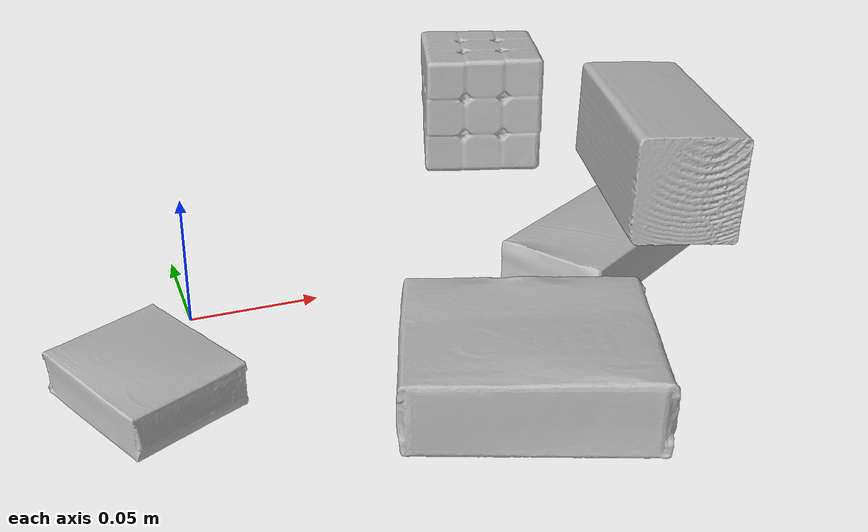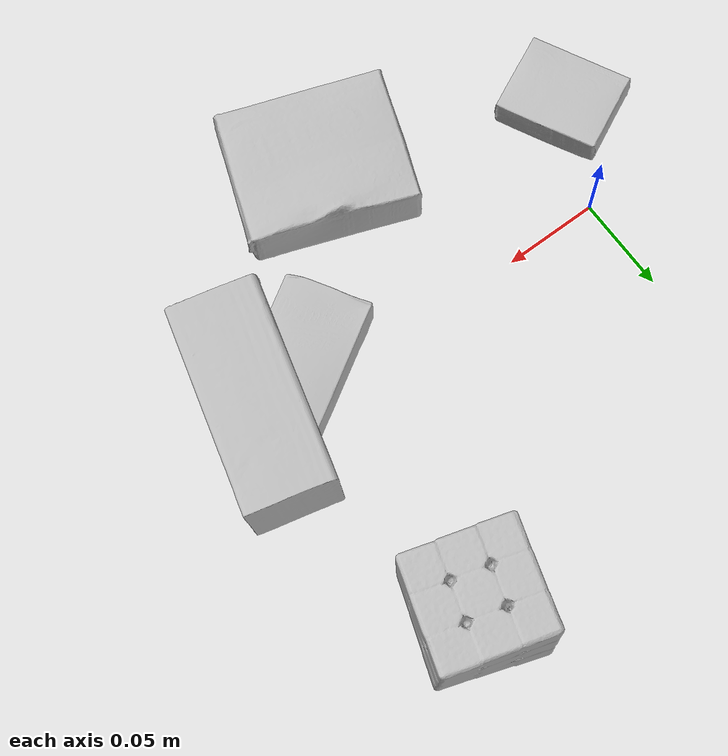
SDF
<sdf version="1.4">
  <world name="default">
    <light name="light1" type="point">
      <pose>0 0 1 0 0 0</pose>
      <diffuse>3 3 3 1</diffuse>
      <specular>3 3 3 1</specular>
    </light>
    <light name="light2" type="point">
      <pose>0 0.5 2 0 0 0</pose>
      <diffuse>1 1 1 1</diffuse>
      <specular>1 1 1 1</specular>
    </light>
    <light name="light3" type="point">
      <pose>0 0.5 2 0 0 0</pose>
      <diffuse>3 3 3 1</diffuse>
      <specular>3 3 3 1</specular>
    </light>
    <scene>
      <ambient>0.7 0.7 0.7</ambient>
    </scene>
    <model name="box1">
      <link name="link_box1">
        <collision name="default">
          <geometry>
            <mesh>
              <uri>model://gelatin_box/collision_meshes/collision.obj</uri>
              <scale>1.0 1.0 1.0</scale>
            </mesh>
          </geometry>
          <surface>
            <friction>
              <ode>
                <mu>0.5</mu>
                <mu2>0.5</mu2>
              </ode>
            </friction>
          <contact>
        <ode>
            <max_vel>0</max_vel>
            <min_depth>0.0001</min_depth>
            <kp>1e8</kp>
        </ode>
    </contact></surface>
        </collision>
        <visual name="default">
          <geometry>
            <mesh>
              <uri>model://gelatin_box/visual_meshes/visual.dae</uri>
              <scale>1.0 1.0 1.0</scale>
            </mesh>
          </geometry>
        </visual>
        <inertial>
          <mass>0.15228882431983948</mass>
          <pose>0.0004319618456065655 0.00011156871914863586 -0.0003640321083366871 -0.00105037218966889 -0.004755816826754503 0.0164405576082189</pose>
          <inertia>
            <ixx>0.00010750349</ixx>
            <iyy>7.678918e-05</iyy>
            <izz>0.00016364428</izz>
            <ixy>0</ixy>
            <ixz>0</ixz>
            <iyz>0</iyz>
          </inertia>
        </inertial>
      </link>
      <pose>0.0996294766664505 -0.09493771195411682 0.01516831573098898 0.005597453440088006 -0.0073045392859182705 1.2186335979841327</pose>
    </model>
    <model name="box2">
      <link name="link_box2">
        <collision name="default">
          <geometry>
            <mesh>
              <uri>model://rubiks_cube/collision_meshes/collision.obj</uri>
              <scale>1.0 1.0 1.0</scale>
            </mesh>
          </geometry>
          <surface>
            <friction>
              <ode>
                <mu>0.5</mu>
                <mu2>0.5</mu2>
              </ode>
            </friction>
          <contact>
        <ode>
            <max_vel>0</max_vel>
            <min_depth>0.0001</min_depth>
            <kp>1e8</kp>
        </ode>
    </contact></surface>
        </collision>
        <visual name="default">
          <geometry>
            <mesh>
              <uri>model://rubiks_cube/visual_meshes/visual.dae</uri>
              <scale>1.0 1.0 1.0</scale>
            </mesh>
          </geometry>
        </visual>
        <inertial>
          <mass>0.18699690699577332</mass>
          <pose>2.6721041649580002e-05 5.2569666877388954e-05 -7.264316082000732e-06 -0.054672785544912415 -0.09814058570479768 -0.03445363054661819</pose>
          <inertia>
            <ixx>0.00010332834</ixx>
            <iyy>0.00010284647</iyy>
            <izz>0.000104184575</izz>
            <ixy>0</ixy>
            <ixz>0</ixz>
            <iyz>0</iyz>
          </inertia>
        </inertial>
      </link>
      <pose>0.17097941040992737 0.12722955644130707 0.028678975999355316 -3.3347017488859524e-06 -8.496593543738281e-07 2.850847059373177</pose>
    </model>
    <model name="box3">
      <link name="link_box3">
        <collision name="default">
          <geometry>
            <mesh>
              <uri>model://pudding_box/collision_meshes/collision.obj</uri>
              <scale>0.5 0.5 0.5</scale>
            </mesh>
          </geometry>
          <surface>
            <friction>
              <ode>
                <mu>0.5</mu>
                <mu2>0.5</mu2>
              </ode>
            </friction>
          <contact>
        <ode>
            <max_vel>0</max_vel>
            <min_depth>0.0001</min_depth>
            <kp>1e8</kp>
        </ode>
    </contact></surface>
        </collision>
        <visual name="default">
          <geometry>
            <mesh>
              <uri>model://pudding_box/visual_meshes/visual.dae</uri>
              <scale>0.5 0.5 0.5</scale>
            </mesh>
          </geometry>
        </visual>
        <inertial>
          <mass>0.04129739850759506</mass>
          <pose>0.00024474109522998333 0.00040339428232982755 -0.0002594413817860186 0.005213100432551209 -0.006603796827212886 0.020079819580048088</pose>
          <inertia>
            <ixx>1.1671145e-05</ixx>
            <iyy>7.852431e-06</iyy>
            <izz>1.7235501e-05</izz>
            <ixy>0</ixy>
            <ixz>0</ixz>
            <iyz>0</iyz>
          </inertia>
        </inertial>
      </link>
      <pose>-0.02300098165869713 -0.052644189447164536 0.00986290443688631 0.022348564173107856 -0.011391709098123879 0.45332838959432725</pose>
    </model>
    <model name="box4">
      <link name="link_box4">
        <collision name="default">
          <geometry>
            <mesh>
              <uri>model://sugar_box/collision_meshes/collision.obj</uri>
              <scale>0.5 0.5 0.5</scale>
            </mesh>
          </geometry>
          <surface>
            <friction>
              <ode>
                <mu>0.5</mu>
                <mu2>0.5</mu2>
              </ode>
            </friction>
          <contact>
        <ode>
            <max_vel>0</max_vel>
            <min_depth>0.0001</min_depth>
            <kp>1e8</kp>
        </ode>
    </contact></surface>
        </collision>
        <visual name="default">
          <geometry>
            <mesh>
              <uri>model://sugar_box/visual_meshes/visual.dae</uri>
              <scale>0.5 0.5 0.5</scale>
            </mesh>
          </geometry>
        </visual>
        <inertial>
          <mass>0.09136254340410233</mass>
          <pose>0.0005171863595023751 1.924554817378521e-05 -0.00018182402709499002 -0.00040462606744182556 0.0010506635219056535 0.0026153790218759383</pose>
          <inertia>
            <ixx>1.9030753e-05</ixx>
            <iyy>6.15113e-05</iyy>
            <izz>7.363638e-05</izz>
            <ixy>0</ixy>
            <ixz>0</ixz>
            <iyz>0</iyz>
          </inertia>
        </inertial>
      </link>
      <pose>0.1706208735704422 -0.013533864170312881 0.011723103933036327 0.0013347637846892444 0.00032618827687619004 0.5521563963149709</pose>
    </model>
    <model name="box5">
      <link name="link_box5">
        <collision name="default">
          <geometry>
            <mesh>
              <uri>model://wood_block/collision_meshes/collision.obj</uri>
              <scale>0.5 0.5 0.5</scale>
            </mesh>
          </geometry>
          <surface>
            <friction>
              <ode>
                <mu>0.5</mu>
                <mu2>0.5</mu2>
              </ode>
            </friction>
          <contact>
        <ode>
            <max_vel>0</max_vel>
            <min_depth>0.0001</min_depth>
            <kp>1e8</kp>
        </ode>
    </contact></surface>
        </collision>
        <visual name="default">
          <geometry>
            <mesh>
              <uri>model://wood_block/visual_meshes/visual.dae</uri>
              <scale>0.5 0.5 0.5</scale>
            </mesh>
          </geometry>
        </visual>
        <inertial>
          <mass>0.2591090798377991</mass>
          <pose>-2.9066577553749084e-06 -0.00028540470520965755 0.00013204290007706732 -0.05220937491622274 -0.005192696068464721 -0.006861378365732138</pose>
          <inertia>
            <ixx>8.6681786e-05</ixx>
            <iyy>0.00027382775</iyy>
            <izz>0.0002728035</izz>
            <ixy>0</ixy>
            <ixz>0</ixz>
            <iyz>0</iyz>
          </inertia>
        </inertial>
      </link>
      <pose>0.19874320924282074 -0.002080646576359868 0.04547201469540596 -0.04252842353055647 -0.006635513235854012 -1.8191136091226847</pose>
    </model>
  <physics type="ode">
      <max_contacts>50</max_contacts>
      <ode>
        <solver>
          <type>quick</type>
          <iters>75</iters>
        </solver>
        <constraints>
          <contact_max_correcting_vel>0</contact_max_correcting_vel>
          <contact_surface_layer>0</contact_surface_layer>
        </constraints>
      </ode>
    </physics></world>
</sdf>
